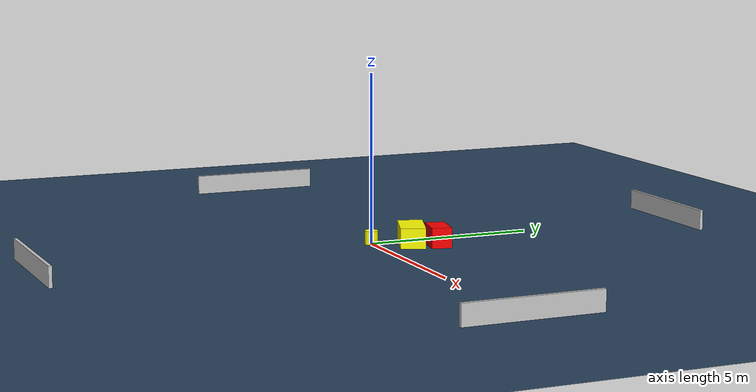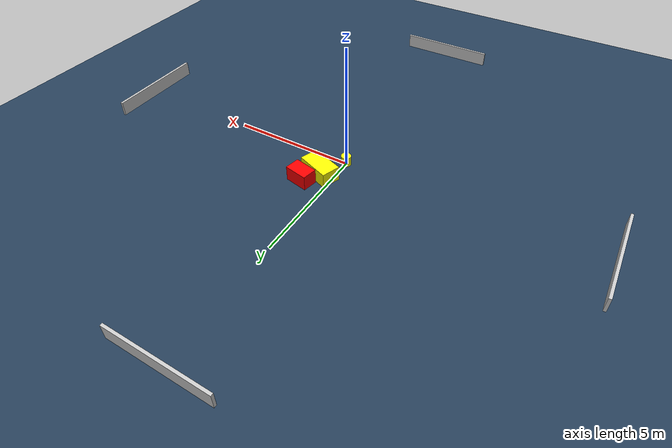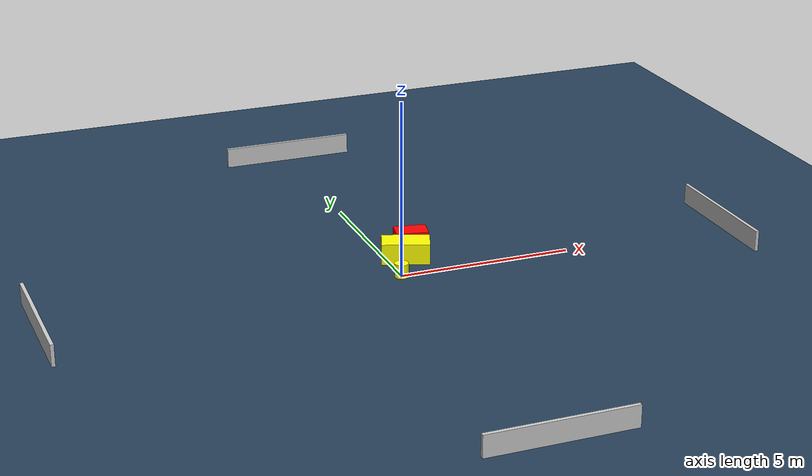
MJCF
<?xml version="1.0" ?>
<mujoco model="generated_environment">
  <option timestep="0.01" integrator="RK4" cone="elliptic"/>
  <default>
    <geom density="1"/>
  </default>
  <asset>
    <texture builtin="gradient" height="3072" name="skybox" rgb1="0.3 0.5 0.7" rgb2="0 0 0" type="skybox" width="512"/>
    <texture builtin="checker" height="300" name="groundplane" rgb1="0.2 0.3 0.4" rgb2="0.1 0.2 0.3" type="2d" width="300"/>
    <material name="groundplane" reflectance="0.2" texrepeat="5 5" texture="groundplane"/>
  </asset>
  <worldbody>
    <light dir="0 0 -1" directional="true" pos="0 0 1.5"/>
    <geom condim="3" friction="0.5 0.005 0.001" material="groundplane" name="floor" pos="0 0 0" size="0 0 0.05" type="plane"/>
    <body name="walls">
      <geom name="wall_1" condim="4" pos="-10.0 0.0 0.3" rgba="0.800000011920929 0.800000011920929 0.800000011920929 1.0" size="0.05 2.0 0.3" type="box"/>
      <geom name="wall_2" condim="4" pos="10.0 0.0 0.3" rgba="0.800000011920929 0.800000011920929 0.800000011920929 1.0" size="0.05 2.0 0.3" type="box"/>
      <geom name="wall_3" condim="4" pos="0.0 -10.0 0.3" rgba="0.800000011920929 0.800000011920929 0.800000011920929 1.0" size="2.0 0.05 0.3" type="box"/>
      <geom name="wall_4" condim="4" pos="0.0 10.0 0.3" rgba="0.800000011920929 0.800000011920929 0.800000011920929 1.0" size="2.0 0.05 0.3" type="box"/>
    </body>
    <body name="robot">
      <joint name="joint_x" type="slide" pos="0 0 0" axis="1 0 0"/>
      <joint name="joint_y" type="slide" pos="0 0 0" axis="0 1 0"/>
      <geom name="robot" type="cylinder" pos="0.0 0.0 0.2" size="0.2 0.2 0.0" mass="5.0" friction="1.0 0.005 0.0001" condim="4" rgba="1.0 1.0 0.0 1.0"/>
    </body>
    <body name="obstacle_1_movable">
      <geom name="obstacle_1_movable" condim="4" pos="0.5309262570173736 1.0425905914019336 0.3" euler="0 0 160.04478392782065" friction="0.0 0.005 0.001" rgba="1.0 1.0 0.0 1.0" size="0.6772153653666925 0.37156219428429915 0.3" type="box" mass="0.1"/>
      <joint type="free"/>
    </body>
    <body name="obstacle_2_static">
      <geom name="obstacle_2_static" condim="4" pos="0.9482547789301007 1.7017419924781583 0.3" euler="0 0 258.7049640508953" friction="0.0 0.005 0.001" rgba="1.0 0.0 0.0 1.0" size="0.2936680328763932 0.46331132216602056 0.3" type="box"/>
    </body>
  </worldbody>
  <actuator>
    <motor name="actuator_x" joint="joint_x" gear="1" ctrlrange="-1 1"/>
    <motor name="actuator_y" joint="joint_y" gear="1" ctrlrange="-1 1"/>
  </actuator>
</mujoco>
